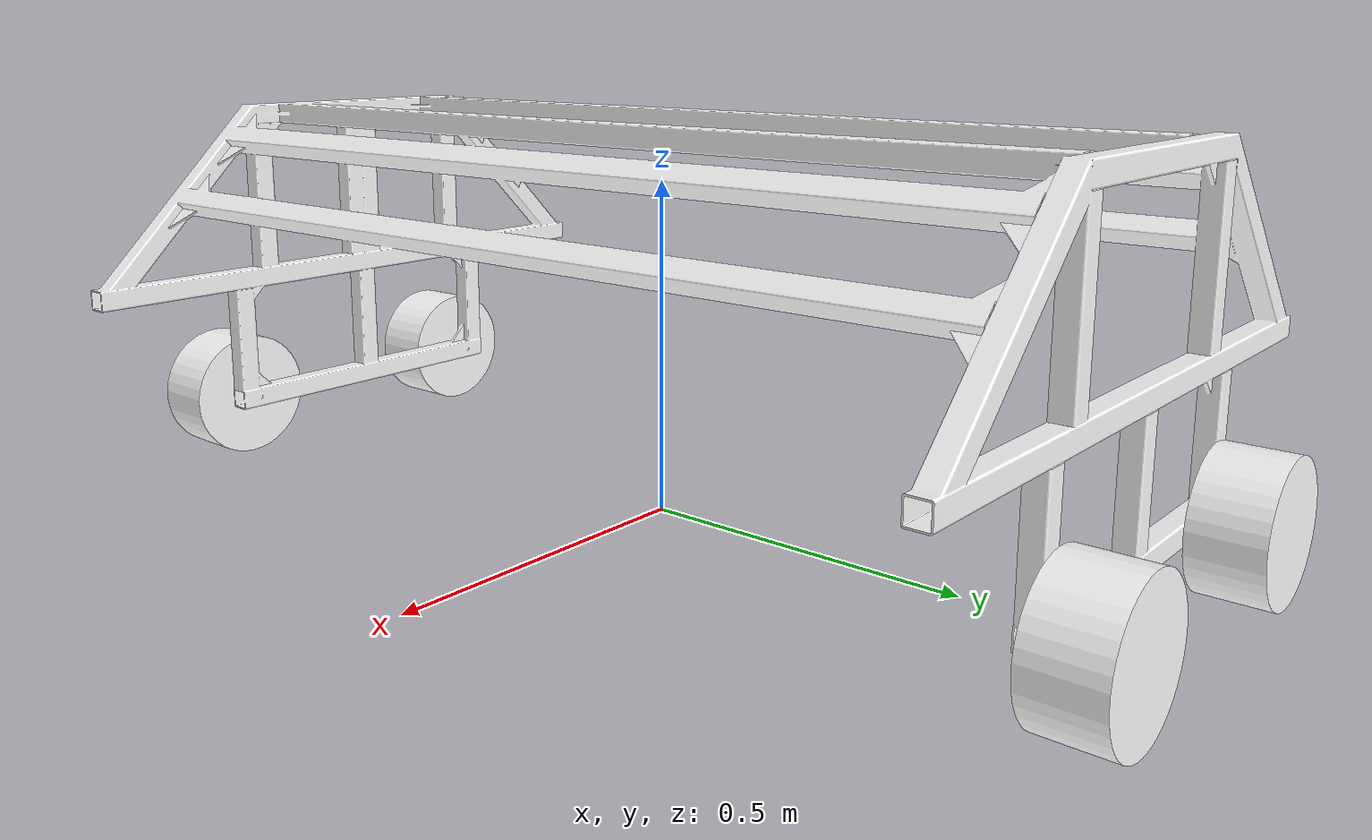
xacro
<?xml version="1.0"?>
<robot xmlns:xacro="http://www.ros.org/wiki/xacro" name="robot">

    <xacro:include filename="gazebo2.xacro"/>

    <material name="white">
        <color rgba="1 1 1 1"/>
    </material>

    <link name="dummy"/>

    <joint type="fixed" name="dummy">
        <parent link="dummy"/>
        <child link="base_link"/>
        <origin xyz="0 0 0.305" rpy="0 0 0" />
    </joint>

    <link name="base_link">
        <inertial>
            <!-- Mass -->
            <mass value="48.94155" />

            <!-- Center of Mass -->
            <origin xyz="-0.06061 0.03849 0.13055" />

            <!-- Inertia Matrix -->
            <inertia
            ixx="11.69721231776"
            ixy="-0.24793148078"
            ixz="0.13519725788"
            iyy="2.68655479586"
            iyz="-0.43545579979"
            izz="13.00728941730" />
        </inertial>
        <visual>
            <origin xyz="0 0 0" rpy="0 0 0" />
            <geometry>
                <mesh
                filename="file:///$(find lidar_description)/meshes/base_link.STL"/>
            </geometry>
            <material name="white"/>
        </visual>
        <collision>
            <origin xyz="0 0 0" rpy="0 0 0" />
            <geometry>
                <mesh
                filename="file:///$(find lidar_description)/meshes/base_link.STL"/>
            </geometry>
        </collision>
    </link>

    <link name="right_wheel_b">
        <xacro:inertial_cylinder mass="9.304" length="0.1" radius="0.1">
            <origin xyz="0 0 0" rpy="0 0 0"/>
        </xacro:inertial_cylinder>
        <visual>
            <origin xyz="0 0 0" rpy="0 0 0" />
            <geometry>
                <mesh
                filename="file:///$(find lidar_description)/meshes/wheel.STL" />
            </geometry>
            <material name="white"/>
        </visual>
        <collision>
            <origin xyz="0 0 0" rpy="0 0 0" />
            <geometry>
                <mesh
                filename="file:///$(find lidar_description)/meshes/wheel.STL" />
            </geometry>
        </collision>
    </link>

    <link name="left_wheel_b">
        <xacro:inertial_cylinder mass="9.304" length="0.1" radius="0.1">
            <origin xyz="0 0 0" rpy="0 0 0"/>
        </xacro:inertial_cylinder>
        <visual>
            <origin xyz="0 0 0" rpy="0 0 0" />
            <geometry>
                <mesh
                filename="file:///$(find lidar_description)/meshes/wheel.STL" />
            </geometry>
            <material name="white"/>
        </visual>
        <collision>
            <origin xyz="0 0 0" rpy="0 0 0" />
            <geometry>
                <mesh
                filename="file:///$(find lidar_description)/meshes/wheel.STL" />
            </geometry>
        </collision>
    </link>

    <link name="right_wheel_f">
        <xacro:inertial_cylinder mass="9.304" length="0.1" radius="0.1">
            <origin xyz="0 0 0" rpy="0 0 0"/>
        </xacro:inertial_cylinder>
        <visual>
            <origin xyz="0 0 0" rpy="0 0 0" />
            <geometry>
                <mesh
                filename="file:///$(find lidar_description)/meshes/wheel.STL" />
            </geometry>
            <material name="white"/>
        </visual>
        <collision>
            <origin xyz="0 0 0" rpy="0 0 0" />
            <geometry>
                <mesh
                filename="file:///$(find lidar_description)/meshes/wheel.STL" />
            </geometry>
        </collision>
    </link>

    <link name="left_wheel_f">
        <xacro:inertial_cylinder mass="9.304" length="0.1" radius="0.1">
            <origin xyz="0 0 0" rpy="0 0 0"/>
        </xacro:inertial_cylinder>
        <visual>
            <origin xyz="0 0 0" rpy="0 0 0" />
            <geometry>
                <mesh
                filename="file:///$(find lidar_description)/meshes/wheel.STL" />
            </geometry>
            <material name="white"/>
        </visual>
        <collision>
            <origin xyz="0 0 0" rpy="0 0 0" />
            <geometry>
                <mesh
                filename="file:///$(find lidar_description)/meshes/wheel.STL" />
            </geometry>
        </collision>
    </link>

    <joint name="left_joint_b" type="continuous">
        <origin xyz="-0.23216 0.78175 -0.205" rpy="1.57079632679 0 0" />
        <parent link="base_link" />
        <child link="left_wheel_b" />
        <axis xyz="0 0 1" />
        <limit
            effort="10.0"
            lower="-3.14159265359"
            upper="3.14159265359"
            velocity="10.0"
            />
    </joint>

    <joint name="right_joint_b" type="continuous">
        <origin xyz="-0.23216 -0.78175 -0.205" rpy="-1.57079632679 0 0" />
        <parent link="base_link" />
        <child link="right_wheel_b" />
        <axis xyz="0 0 1" />
        <limit
            effort="10.0"
            lower="-3.14159265359"
            upper="3.14159265359"
            velocity="10.0"
            />
    </joint>

    <joint name="left_joint_f" type="continuous">
        <origin xyz="0.23216 0.78175 -0.205" rpy="1.57079632679 0 0" />
        <parent link="base_link" />
        <child link="left_wheel_f" />
        <axis xyz="0 0 1" />
        <limit
            effort="10.0"
            lower="-3.14159265359"
            upper="3.14159265359"
            velocity="10.0"
            />
    </joint>

    <joint name="right_joint_f" type="continuous">
        <origin xyz="0.23216 -0.78175 -0.205" rpy="-1.57079632679 0 0" />
        <parent link="base_link" />
        <child link="right_wheel_f" />
        <axis xyz="0 0 1" />
        <limit
            effort="10.0"
            lower="-3.14159265359"
            upper="3.14159265359"
            velocity="10.0"
            />
    </joint>

</robot>

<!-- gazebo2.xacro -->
<robot xmlns:xacro="http://www.ros.org/wiki/xacro" name="example">

    <xacro:include filename="inertial_macros.xacro"/>

    <ros2_control name="GazeboSystem" type="system">
        <hardware>
            <plugin>gazebo_ros2_control/GazeboSystem</plugin>
        </hardware>
        <joint name="left_joint_b">
            <command_interface name="velocity"/>
            <state_interface name="position">
                <param name="initial_value">0.0</param>
            </state_interface>
            <state_interface name="velocity"/>
            <state_interface name="effort"/>
        </joint>
        <joint name="right_joint_b">
            <command_interface name="velocity"/>
            <state_interface name="position">
                <param name="initial_value">0.0</param>
            </state_interface>
            <state_interface name="velocity"/>
            <state_interface name="effort"/>
        </joint>
        <joint name="left_joint_f">
            <command_interface name="velocity"/>
            <state_interface name="position">
                <param name="initial_value">0.0</param>
            </state_interface>
            <state_interface name="velocity"/>
            <state_interface name="effort"/>
        </joint>
        <joint name="right_joint_f">
            <command_interface name="velocity"/>
            <state_interface name="position">
                <param name="initial_value">0.0</param>
            </state_interface>
            <state_interface name="velocity"/>
            <state_interface name="effort"/>
        </joint>
    </ros2_control>

    <gazebo>
        <plugin filename="libgazebo_ros2_control.so" name="gazebo_ros2_control">
            <robot_sim_type>gazebo_ros2_control/GazeboSystem</robot_sim_type>
            <parameters>$(find lidar_description)/config/example_controllers.yaml</parameters>
        </plugin>

    </gazebo>

    <gazebo reference="dummy">
        <gravity>true</gravity>
        <sensor type="ray" name="lidar_sensor">
            <pose>0.17 0 0.6 0 1.5707 0</pose>
            <visualize>true</visualize>
            <update_rate>10</update_rate>
            <ray>
                <scan>
                    <horizontal>
                        <sample>720</sample>
                        <resolution>1.125</resolution>
                        <min_angle>0</min_angle>
                        <max_angle>6.28318530718 </max_angle>
                    </horizontal>
                </scan>
                <range>
                    <min>0.05</min>
                    <max>16</max>
                    <resolution>000001</resolution>
                </range>
            </ray>
            <plugin filename="libgazebo_ros_ray_sensor.so" name="lidar">
                <output_type>sensor_msgs/LaserScan</output_type>
            </plugin>
        </sensor>

        <sensor type="imu" name="imu_sensor">
            <pose>0.17 0 0.6 0 0 0</pose>
            <always_on>true</always_on>
            <update_rate>10</update_rate>
            <visualize>true</visualize>
            <topic>__default_topic__</topic>
            <plugin filename="libgazebo_ros_imu_sensor.so" name="imu">
                <topicName>imu</topicName>
                <bodyName>dummy</bodyName>
                <updateRateHZ>10.0</updateRateHZ>
                <gaussianNoise>0.0</gaussianNoise>
                <xyzOffset>0 0 0</xyzOffset>
                <rpyOffset>0 0 0</rpyOffset>
                <frameName>dummy</frameName>
                <initialOrientationAsReference>false</initialOrientationAsReference>
            </plugin>
        </sensor>

        <mu1>0.2</mu1>
        <mu2>0.2</mu2>
        <material>Gazebo/Green</material>
    </gazebo>

    <gazebo reference="base_link">
        <mu1>0.2</mu1>
        <mu2>0.2</mu2>
        <material>Gazebo/Green</material>
    </gazebo>

    <gazebo reference="left_wheel_f">
        <mu1>0.85</mu1>
        <mu2>0.65</mu2>
        <material>Gazebo/Red</material>
    </gazebo>

    <gazebo reference="left_wheel_b">
        <mu1>0.85</mu1>
        <mu2>0.65</mu2>
        <material>Gazebo/Red</material>
    </gazebo>

    <gazebo reference="right_wheel_f">
        <mu1>0.85</mu1>
        <mu2>0.65</mu2>
        <material>Gazebo/Blue</material>
    </gazebo>

    <gazebo reference="right_wheel_b">
        <mu1>0.85</mu1>
        <mu2>0.65</mu2>
        <material>Gazebo/Blue</material>
    </gazebo>

</robot>

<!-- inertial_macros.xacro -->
<robot xmlns:xacro="http://www.ros.org/wiki/xacro" >

    <!-- Specify some standard inertial calculations https://en.wikipedia.org/wiki/List_of_moments_of_inertia -->
    <!-- These make use of xacro's mathematical functionality -->

    <xacro:macro name="inertial_sphere" params="mass radius *origin">
        <inertial>
            <xacro:insert_block name="origin"/>
            <mass value="${mass}" />
            <inertia ixx="${(2/5) * mass * (radius*radius)}" ixy="0.0" ixz="0.0"
                    iyy="${(2/5) * mass * (radius*radius)}" iyz="0.0"
                    izz="${(2/5) * mass * (radius*radius)}" />
        </inertial>
    </xacro:macro>

    <xacro:macro name="inertial_box" params="mass x y z *origin">
        <inertial>
            <xacro:insert_block name="origin"/>
            <mass value="${mass}" />
            <inertia ixx="${(1/12) * mass * (y*y+z*z)}" ixy="0.0" ixz="0.0"
                    iyy="${(1/12) * mass * (x*x+z*z)}" iyz="0.0"
                    izz="${(1/12) * mass * (x*x+y*y)}" />
        </inertial>
    </xacro:macro>

    <xacro:macro name="inertial_cylinder" params="mass length radius *origin">

        <inertial>
            <xacro:insert_block name="origin"/>
            <mass value="${mass}" />
            <inertia ixx="${(1/12) * mass * (3*radius*radius + length*length)}" ixy="0.0" ixz="0.0"
                    iyy="${(1/12) * mass * (3*radius*radius + length*length)}" iyz="0.0"
                    izz="${(1/2) * mass * (radius*radius)}" />
        </inertial>
    </xacro:macro>

</robot>
